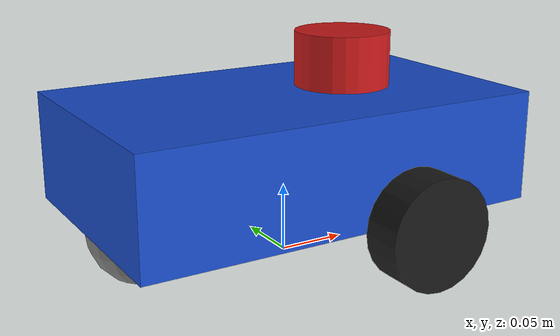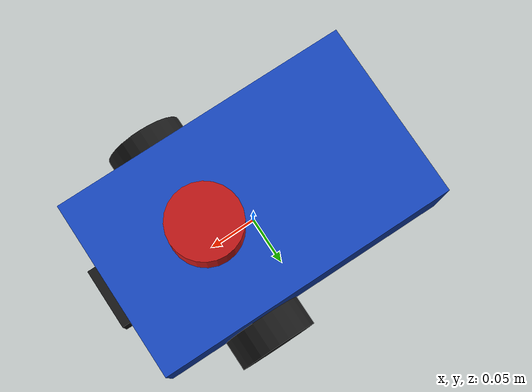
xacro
<?xml version="1.0"?>
<robot name="rover" xmlns:xacro="http://www.ros.org/wiki/xacro">

  <!-- Dimensions (meters / kg) -->
  <xacro:property name="body_l" value="0.30"/>
  <xacro:property name="body_w" value="0.18"/>
  <xacro:property name="body_h" value="0.08"/>
  <xacro:property name="body_mass" value="2.0"/>
  <xacro:property name="wheel_r" value="0.04"/>
  <xacro:property name="wheel_w" value="0.03"/>
  <xacro:property name="wheel_mass" value="0.2"/>
  <xacro:property name="wheel_y" value="0.105"/>
  <xacro:property name="wheel_x" value="0.05"/>

  <material name="blue"><color rgba="0.1 0.3 0.8 1"/></material>
  <material name="black"><color rgba="0.1 0.1 0.1 1"/></material>
  <material name="red"><color rgba="0.8 0.1 0.1 1"/></material>
  <material name="grey"><color rgba="0.5 0.5 0.5 1"/></material>

  <!-- Body -->
  <link name="base_link">
    <visual>
      <origin xyz="0 0 ${wheel_r + body_h/2}"/>
      <geometry><box size="${body_l} ${body_w} ${body_h}"/></geometry>
      <material name="blue"/>
    </visual>
    <collision>
      <origin xyz="0 0 ${wheel_r + body_h/2}"/>
      <geometry><box size="${body_l} ${body_w} ${body_h}"/></geometry>
    </collision>
    <inertial>
      <origin xyz="0 0 ${wheel_r + body_h/2}"/>
      <mass value="${body_mass}"/>
      <inertia ixx="${body_mass/12*(body_w*body_w + body_h*body_h)}" ixy="0" ixz="0"
               iyy="${body_mass/12*(body_l*body_l + body_h*body_h)}" iyz="0"
               izz="${body_mass/12*(body_l*body_l + body_w*body_w)}"/>
    </inertial>
  </link>

  <!-- Wheel macro: write once, call twice -->
  <xacro:macro name="wheel" params="name y_pos">
    <link name="${name}">
      <visual>
        <origin rpy="${pi/2} 0 0"/>
        <geometry><cylinder radius="${wheel_r}" length="${wheel_w}"/></geometry>
        <material name="black"/>
      </visual>
      <collision>
        <origin rpy="${pi/2} 0 0"/>
        <geometry><cylinder radius="${wheel_r}" length="${wheel_w}"/></geometry>
      </collision>
      <inertial>
        <mass value="${wheel_mass}"/>
        <inertia ixx="${wheel_mass/12*(3*wheel_r*wheel_r + wheel_w*wheel_w)}" ixy="0" ixz="0"
                 iyy="${wheel_mass*wheel_r*wheel_r/2}" iyz="0"
                 izz="${wheel_mass/12*(3*wheel_r*wheel_r + wheel_w*wheel_w)}"/>
      </inertial>
    </link>
    <joint name="${name}_joint" type="continuous">
      <parent link="base_link"/>
      <child link="${name}"/>
      <origin xyz="${wheel_x} ${y_pos} ${wheel_r}"/>
      <axis xyz="0 1 0"/>
    </joint>
  </xacro:macro>

  <xacro:wheel name="wheel_left"  y_pos="${wheel_y}"/>
  <xacro:wheel name="wheel_right" y_pos="${-wheel_y}"/>

  <!-- Caster (rear ball) -->
  <link name="caster">
    <visual>
      <geometry><sphere radius="${wheel_r}"/></geometry>
      <material name="grey"/>
    </visual>
    <collision>
      <geometry><sphere radius="${wheel_r}"/></geometry>
    </collision>
  </link>
  <joint name="caster_joint" type="fixed">
    <parent link="base_link"/>
    <child link="caster"/>
    <origin xyz="${-body_l/2 + 0.04} 0 ${wheel_r}"/>
  </joint>

  <!-- Lidar (top of body) -->
  <link name="lidar_link">
    <visual>
      <geometry><cylinder radius="0.035" length="0.04"/></geometry>
      <material name="red"/>
    </visual>
  </link>
  <joint name="lidar_joint" type="fixed">
    <parent link="base_link"/>
    <child link="lidar_link"/>
    <origin xyz="0.05 0 ${wheel_r + body_h + 0.02}"/>
  </joint>

  <!-- Camera (front of body) -->
  <link name="camera_link">
    <visual>
      <geometry><box size="0.02 0.06 0.03"/></geometry>
      <material name="black"/>
    </visual>
  </link>
  <joint name="camera_joint" type="fixed">
    <parent link="base_link"/>
    <child link="camera_link"/>
    <origin xyz="${body_l/2} 0 ${wheel_r + body_h/2}"/>
  </joint>

  <!-- Gazebo settings (colors and friction) -->
  <gazebo reference="base_link">
    <material>Gazebo/Blue</material>
  </gazebo>

  <gazebo reference="wheel_left">
    <material>Gazebo/Black</material>
    <mu1>1.0</mu1>
    <mu2>1.0</mu2>
  </gazebo>

  <gazebo reference="wheel_right">
    <material>Gazebo/Black</material>
    <mu1>1.0</mu1>
    <mu2>1.0</mu2>
  </gazebo>

  <gazebo reference="caster">
    <material>Gazebo/Grey</material>
    <mu1>0.0</mu1>
    <mu2>0.0</mu2>
  </gazebo>

  <gazebo reference="lidar_link">
    <material>Gazebo/Red</material>
    <sensor name="lidar" type="ray">
      <always_on>true</always_on>
      <visualize>true</visualize>
      <update_rate>10</update_rate>
      <ray>
        <scan>
          <horizontal>
            <samples>360</samples>
            <resolution>1</resolution>
            <min_angle>-3.14159</min_angle>
            <max_angle>3.14159</max_angle>
          </horizontal>
        </scan>
        <range>
          <min>0.12</min>
          <max>6.0</max>
          <resolution>0.01</resolution>
        </range>
      </ray>
      <plugin name="lidar_plugin" filename="libgazebo_ros_ray_sensor.so">
        <ros>
          <remapping>~/out:=scan</remapping>
        </ros>
        <output_type>sensor_msgs/LaserScan</output_type>
        <frame_name>lidar_link</frame_name>
      </plugin>
    </sensor>
  </gazebo>

  <gazebo reference="camera_link">
    <material>Gazebo/Black</material>
  </gazebo>

  <!-- Differential drive plugin: makes the wheels respond to /cmd_vel -->
  <gazebo>
    <plugin name="diff_drive" filename="libgazebo_ros_diff_drive.so">
      <update_rate>50</update_rate>
      <left_joint>wheel_left_joint</left_joint>
      <right_joint>wheel_right_joint</right_joint>
      <wheel_separation>${2*wheel_y}</wheel_separation>
      <wheel_diameter>${2*wheel_r}</wheel_diameter>
      <max_wheel_torque>20</max_wheel_torque>
      <max_wheel_acceleration>1.0</max_wheel_acceleration>
      <command_topic>cmd_vel</command_topic>
      <publish_odom>true</publish_odom>
      <publish_odom_tf>true</publish_odom_tf>
      <publish_wheel_tf>true</publish_wheel_tf>
      <odometry_frame>odom</odometry_frame>
      <robot_base_frame>base_link</robot_base_frame>
    </plugin>
  </gazebo>

</robot>
